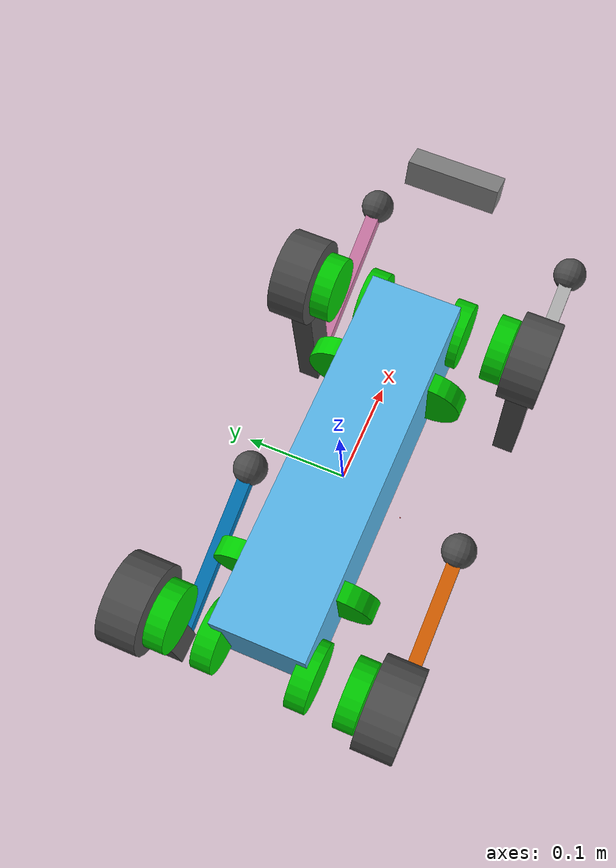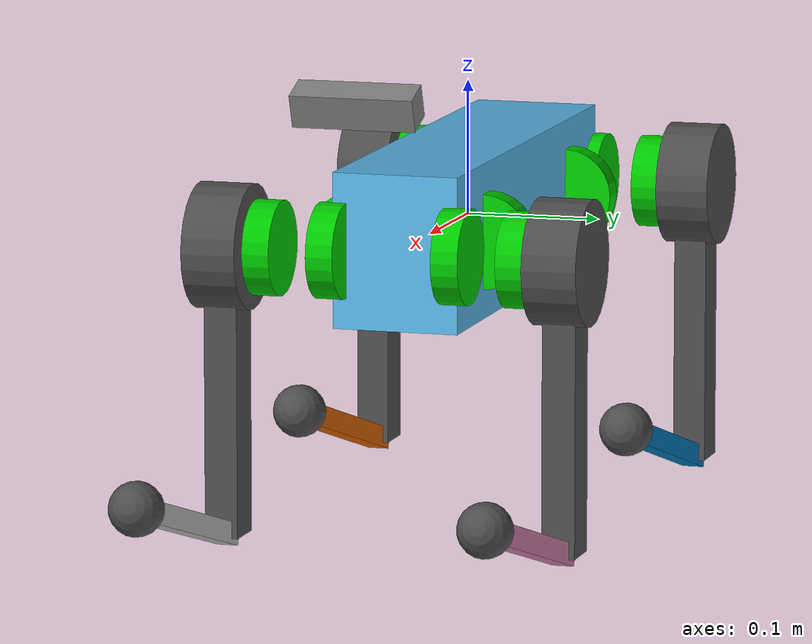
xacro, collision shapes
<?xml version="1.0"?>

<robot name="go1_description" xmlns:xacro="http://www.ros.org/wiki/xacro">

    <xacro:include filename="$(find go1_description)/urdf/go1_description.urdf"/>
    <xacro:include filename="$(find go1_description)/xacro/gazebo.xacro"/>
    <xacro:include filename="$(find robot_common)/xacro/d435.xacro"/>

    <!-- D435 camera -->
    <xacro:sensor_d435 parent="trunk" name="camera">
        <origin xyz="0.28 0 0.12" rpy="0 0.349066 0"/>
    </xacro:sensor_d435>

    <!-- Livox Mid360 LiDAR -->

</robot>

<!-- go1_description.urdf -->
<!-- |    This document was autogenerated by xacro from robot.xacro                    | -->
<!-- |    EDITING THIS FILE BY HAND IS NOT RECOMMENDED                                 | -->
<robot name="go1">
  <material name="black">
    <color rgba="0.0 0.0 0.0 1.0"/>
  </material>
  <material name="blue">
    <color rgba="0.0 0.0 0.8 1.0"/>
  </material>
  <material name="green">
    <color rgba="0.0 0.8 0.0 1.0"/>
  </material>
  <material name="grey">
    <color rgba="0.2 0.2 0.2 1.0"/>
  </material>
  <material name="silver">
    <color rgba="0.9137254901960784 0.9137254901960784 0.8470588235294118 1.0"/>
  </material>
  <material name="orange">
    <color rgba="1.0 0.4235294117647059 0.0392156862745098 1.0"/>
  </material>
  <material name="brown">
    <color rgba="0.8705882352941177 0.8117647058823529 0.7647058823529411 1.0"/>
  </material>
  <material name="red">
    <color rgba="0.8 0.0 0.0 1.0"/>
  </material>
  <material name="white">
    <color rgba="1.0 1.0 1.0 1.0"/>
  </material>

  <link name="base">
    <visual>
      <origin rpy="0 0 0" xyz="0 0 0"/>
      <geometry>
        <box size="0.001 0.001 0.001"/>
      </geometry>
    </visual>
  </link>
  <joint name="floating_base" type="fixed">
    <origin rpy="0 0 0" xyz="0 0 0"/>
    <parent link="base"/>
    <child link="trunk"/>
  </joint>
  <link name="trunk">
    <visual>
      <origin rpy="0 0 0" xyz="0 0 0"/>
      <geometry>
        <mesh filename="package://go1_description/meshes/trunk.dae" scale="1 1 1"/>
      </geometry>
    </visual>
    <collision>
      <origin rpy="0 0 0" xyz="0 0 0"/>
      <geometry>
        <box size="0.3762 0.0935 0.114"/>
      </geometry>
    </collision>
    <inertial>
      <origin rpy="0 0 0" xyz="0.0223 0.002 -0.0005"/>
      <mass value="5.204"/>
      <inertia ixx="0.0168128557" ixy="-0.0002296769" ixz="-0.0002945293" iyy="0.063009565" iyz="-4.18731e-05" izz="0.0716547275"/>
    </inertial>
  </link>
  <joint name="imu_joint" type="fixed">
    <parent link="trunk"/>
    <child link="imu_link"/>
    <origin rpy="0 0 0" xyz="-0.01592 -0.06659 -0.00617"/>
  </joint>
  <link name="imu_link">
    <inertial>
      <mass value="0.001"/>
      <origin rpy="0 0 0" xyz="0 0 0"/>
      <inertia ixx="0.0001" ixy="0" ixz="0" iyy="0.0001" iyz="0" izz="0.0001"/>
    </inertial>
    <visual>
      <origin rpy="0 0 0" xyz="0 0 0"/>
      <geometry>
        <box size="0.001 0.001 0.001"/>
      </geometry>
    </visual>
    <collision>
      <origin rpy="0 0 0" xyz="0 0 0"/>
      <geometry>
        <box size=".001 .001 .001"/>
      </geometry>
    </collision>
  </link>
  <joint name="FR_hip_joint" type="revolute">
    <origin rpy="0 0 0" xyz="0.1881 -0.04675 0"/>
    <parent link="trunk"/>
    <child link="FR_hip"/>
    <axis xyz="1 0 0"/>
    <dynamics damping="0.0" friction="0.0"/>
    <limit effort="23.7" lower="-0.863" upper="0.863" velocity="30.1"/>
  </joint>
  <joint name="FR_hip_rotor_joint" type="fixed">
    <origin rpy="0 0 0" xyz="0.11215 -0.04675 0"/>
    <parent link="trunk"/>
    <child link="FR_hip_rotor"/>
  </joint>
  <link name="FR_hip">
    <visual>
      <origin rpy="3.141592653589793 0 0" xyz="0 0 0"/>
      <geometry>
        <mesh filename="package://go1_description/meshes/hip.dae" scale="1 1 1"/>
      </geometry>
    </visual>
    <collision>
      <origin rpy="1.5707963267948966 0 0" xyz="0 -0.08 0"/>
      <geometry>
        <cylinder length="0.04" radius="0.046"/>
      </geometry>
    </collision>
    <inertial>
      <origin rpy="0 0 0" xyz="-0.005657 0.008752 -0.000102"/>
      <mass value="0.591"/>
      <inertia ixx="0.000334008405" ixy="1.0826066e-05" ixz="1.290732e-06" iyy="0.000619101213" iyz="-1.643194e-06" izz="0.00040057614"/>
    </inertial>
  </link>
  <link name="FR_hip_rotor">
    <visual>
      <origin rpy="0 1.5707963267948966 0" xyz="0 0 0"/>
      <geometry>
        <cylinder length="0.02" radius="0.035"/>
      </geometry>
      <material name="green"/>
    </visual>
    <collision>
      <origin rpy="0 1.5707963267948966 0" xyz="0 0 0"/>
      <geometry>
        <cylinder length="0.02" radius="0.035"/>
      </geometry>
    </collision>
    <inertial>
      <origin rpy="0 0 0" xyz="0.0 0.0 0.0"/>
      <mass value="0.089"/>
      <inertia ixx="0.000111842" ixy="0.0" ixz="0.0" iyy="5.9647e-05" iyz="0.0" izz="5.9647e-05"/>
    </inertial>
  </link>
  <joint name="FR_thigh_joint" type="revolute">
    <origin rpy="0 0 0" xyz="0 -0.08 0"/>
    <parent link="FR_hip"/>
    <child link="FR_thigh"/>
    <axis xyz="0 1 0"/>
    <dynamics damping="0.0" friction="0.0"/>
    <limit effort="23.7" lower="-0.686" upper="4.501" velocity="30.1"/>
  </joint>
  <joint name="FR_thigh_rotor_joint" type="fixed">
    <origin rpy="0 0 0" xyz="0.0 0.00015 0"/>
    <parent link="FR_hip"/>
    <child link="FR_thigh_rotor"/>
  </joint>
  <link name="FR_thigh">
    <visual>
      <origin rpy="0 0 0" xyz="0 0 0"/>
      <geometry>
        <mesh filename="package://go1_description/meshes/thigh_mirror.dae" scale="1 1 1"/>
      </geometry>
    </visual>
    <collision>
      <origin rpy="0 1.5707963267948966 0" xyz="0 0 -0.1065"/>
      <geometry>
        <box size="0.213 0.0245 0.034"/>
      </geometry>
    </collision>
    <inertial>
      <origin rpy="0 0 0" xyz="-0.003342 0.018054 -0.033451"/>
      <mass value="0.92"/>
      <inertia ixx="0.004431760472" ixy="-5.7496807e-05" ixz="-0.000218457134" iyy="0.004485671726" iyz="-0.000572001265" izz="0.000740309489"/>
    </inertial>
  </link>
  <link name="FR_thigh_rotor">
    <visual>
      <origin rpy="1.5707963267948966 0 0" xyz="0 0 0"/>
      <geometry>
        <cylinder length="0.02" radius="0.035"/>
      </geometry>
      <material name="green"/>
    </visual>
    <collision>
      <origin rpy="1.5707963267948966 0 0" xyz="0 0 0"/>
      <geometry>
        <cylinder length="0.02" radius="0.035"/>
      </geometry>
    </collision>
    <inertial>
      <origin rpy="0 0 0" xyz="0.0 0.0 0.0"/>
      <mass value="0.089"/>
      <inertia ixx="5.9647e-05" ixy="0.0" ixz="0.0" iyy="0.000111842" iyz="0.0" izz="5.9647e-05"/>
    </inertial>
  </link>
  <joint name="FR_calf_joint" type="revolute">
    <origin rpy="0 0 0" xyz="0 0 -0.213"/>
    <parent link="FR_thigh"/>
    <child link="FR_calf"/>
    <axis xyz="0 1 0"/>
    <dynamics damping="0.0" friction="0.0"/>
    <limit effort="35.55" lower="-2.818" upper="-0.888" velocity="20.06"/>
  </joint>
  <joint name="FR_calf_rotor_joint" type="fixed">
    <origin rpy="0 0 0" xyz="0.0 0.03235 0"/>
    <parent link="FR_thigh"/>
    <child link="FR_calf_rotor"/>
  </joint>
  <link name="FR_calf">
    <visual>
      <origin rpy="0 0 0" xyz="0 0 0"/>
      <geometry>
        <mesh filename="package://go1_description/meshes/calf.dae" scale="1 1 1"/>
      </geometry>
    </visual>
    <collision>
      <origin rpy="0 1.5707963267948966 0" xyz="0 0 -0.1065"/>
      <geometry>
        <box size="0.213 0.016 0.016"/>
      </geometry>
    </collision>
    <inertial>
      <origin rpy="0 0 0" xyz="0.006197 0.001408 -0.116695"/>
      <mass value="0.135862"/>
      <inertia ixx="0.001088793059" ixy="-2.55679e-07" ixz="7.117814e-06" iyy="0.001100428748" iyz="2.077264e-06" izz="2.4787446e-05"/>
    </inertial>
  </link>
  <link name="FR_calf_rotor">
    <visual>
      <origin rpy="1.5707963267948966 0 0" xyz="0 0 0"/>
      <geometry>
        <cylinder length="0.02" radius="0.035"/>
      </geometry>
      <material name="green"/>
    </visual>
    <collision>
      <origin rpy="1.5707963267948966 0 0" xyz="0 0 0"/>
      <geometry>
        <cylinder length="0.02" radius="0.035"/>
      </geometry>
    </collision>
    <inertial>
      <origin rpy="0 0 0" xyz="0.0 0.0 0.0"/>
      <mass value="0.089"/>
      <inertia ixx="5.9647e-05" ixy="0.0" ixz="0.0" iyy="0.000111842" iyz="0.0" izz="5.9647e-05"/>
    </inertial>
  </link>
  <joint name="FR_foot_fixed" type="fixed">
    <origin rpy="0 0 0" xyz="0 0 -0.213"/>
    <parent link="FR_calf"/>
    <child link="FR_foot"/>
  </joint>
  <link name="FR_foot">
    <visual>
      <origin rpy="0 0 0" xyz="0 0 0"/>
      <geometry>
        <sphere radius="0.01"/>
      </geometry>
    </visual>
    <collision>
      <origin rpy="0 0 0" xyz="0 0 0"/>
      <geometry>
        <sphere radius="0.02"/>
      </geometry>
    </collision>
    <inertial>
      <mass value="0.06"/>
      <inertia ixx="9.600000000000001e-06" ixy="0.0" ixz="0.0" iyy="9.600000000000001e-06" iyz="0.0" izz="9.600000000000001e-06"/>
    </inertial>
  </link>
  <transmission name="FR_hip_tran">
    <type>transmission_interface/SimpleTransmission</type>
    <joint name="FR_hip_joint">
      <hardwareInterface>hardware_interface/EffortJointInterface</hardwareInterface>
    </joint>
    <actuator name="FR_hip_motor">
      <hardwareInterface>hardware_interface/EffortJointInterface</hardwareInterface>
      <mechanicalReduction>1</mechanicalReduction>
    </actuator>
  </transmission>
  <transmission name="FR_thigh_tran">
    <type>transmission_interface/SimpleTransmission</type>
    <joint name="FR_thigh_joint">
      <hardwareInterface>hardware_interface/EffortJointInterface</hardwareInterface>
    </joint>
    <actuator name="FR_thigh_motor">
      <hardwareInterface>hardware_interface/EffortJointInterface</hardwareInterface>
      <mechanicalReduction>1</mechanicalReduction>
    </actuator>
  </transmission>
  <transmission name="FR_calf_tran">
    <type>transmission_interface/SimpleTransmission</type>
    <joint name="FR_calf_joint">
      <hardwareInterface>hardware_interface/EffortJointInterface</hardwareInterface>
    </joint>
    <actuator name="FR_calf_motor">
      <hardwareInterface>hardware_interface/EffortJointInterface</hardwareInterface>
      <mechanicalReduction>1</mechanicalReduction>
    </actuator>
  </transmission>
  <joint name="FL_hip_joint" type="revolute">
    <origin rpy="0 0 0" xyz="0.1881 0.04675 0"/>
    <parent link="trunk"/>
    <child link="FL_hip"/>
    <axis xyz="1 0 0"/>
    <dynamics damping="0.0" friction="0.0"/>
    <limit effort="23.7" lower="-0.863" upper="0.863" velocity="30.1"/>
  </joint>
  <joint name="FL_hip_rotor_joint" type="fixed">
    <origin rpy="0 0 0" xyz="0.11215 0.04675 0"/>
    <parent link="trunk"/>
    <child link="FL_hip_rotor"/>
  </joint>
  <link name="FL_hip">
    <visual>
      <origin rpy="0 0 0" xyz="0 0 0"/>
      <geometry>
        <mesh filename="package://go1_description/meshes/hip.dae" scale="1 1 1"/>
      </geometry>
    </visual>
    <collision>
      <origin rpy="1.5707963267948966 0 0" xyz="0 0.08 0"/>
      <geometry>
        <cylinder length="0.04" radius="0.046"/>
      </geometry>
    </collision>
    <inertial>
      <origin rpy="0 0 0" xyz="-0.005657 -0.008752 -0.000102"/>
      <mass value="0.591"/>
      <inertia ixx="0.000334008405" ixy="-1.0826066e-05" ixz="1.290732e-06" iyy="0.000619101213" iyz="1.643194e-06" izz="0.00040057614"/>
    </inertial>
  </link>
  <link name="FL_hip_rotor">
    <visual>
      <origin rpy="0 1.5707963267948966 0" xyz="0 0 0"/>
      <geometry>
        <cylinder length="0.02" radius="0.035"/>
      </geometry>
      <material name="green"/>
    </visual>
    <collision>
      <origin rpy="0 1.5707963267948966 0" xyz="0 0 0"/>
      <geometry>
        <cylinder length="0.02" radius="0.035"/>
      </geometry>
    </collision>
    <inertial>
      <origin rpy="0 0 0" xyz="0.0 0.0 0.0"/>
      <mass value="0.089"/>
      <inertia ixx="0.000111842" ixy="0.0" ixz="0.0" iyy="5.9647e-05" iyz="0.0" izz="5.9647e-05"/>
    </inertial>
  </link>
  <joint name="FL_thigh_joint" type="revolute">
    <origin rpy="0 0 0" xyz="0 0.08 0"/>
    <parent link="FL_hip"/>
    <child link="FL_thigh"/>
    <axis xyz="0 1 0"/>
    <dynamics damping="0.0" friction="0.0"/>
    <limit effort="23.7" lower="-0.686" upper="4.501" velocity="30.1"/>
  </joint>
  <joint name="FL_thigh_rotor_joint" type="fixed">
    <origin rpy="0 0 0" xyz="0.0 -0.00015 0"/>
    <parent link="FL_hip"/>
    <child link="FL_thigh_rotor"/>
  </joint>
  <link name="FL_thigh">
    <visual>
      <origin rpy="0 0 0" xyz="0 0 0"/>
      <geometry>
        <mesh filename="package://go1_description/meshes/thigh.dae" scale="1 1 1"/>
      </geometry>
    </visual>
    <collision>
      <origin rpy="0 1.5707963267948966 0" xyz="0 0 -0.1065"/>
      <geometry>
        <box size="0.213 0.0245 0.034"/>
      </geometry>
    </collision>
    <inertial>
      <origin rpy="0 0 0" xyz="-0.003342 -0.018054 -0.033451"/>
      <mass value="0.92"/>
      <inertia ixx="0.004431760472" ixy="5.7496807e-05" ixz="-0.000218457134" iyy="0.004485671726" iyz="0.000572001265" izz="0.000740309489"/>
    </inertial>
  </link>
  <link name="FL_thigh_rotor">
    <visual>
      <origin rpy="1.5707963267948966 0 0" xyz="0 0 0"/>
      <geometry>
        <cylinder length="0.02" radius="0.035"/>
      </geometry>
      <material name="green"/>
    </visual>
    <collision>
      <origin rpy="1.5707963267948966 0 0" xyz="0 0 0"/>
      <geometry>
        <cylinder length="0.02" radius="0.035"/>
      </geometry>
    </collision>
    <inertial>
      <origin rpy="0 0 0" xyz="0.0 0.0 0.0"/>
      <mass value="0.089"/>
      <inertia ixx="5.9647e-05" ixy="0.0" ixz="0.0" iyy="0.000111842" iyz="0.0" izz="5.9647e-05"/>
    </inertial>
  </link>
  <joint name="FL_calf_joint" type="revolute">
    <origin rpy="0 0 0" xyz="0 0 -0.213"/>
    <parent link="FL_thigh"/>
    <child link="FL_calf"/>
    <axis xyz="0 1 0"/>
    <dynamics damping="0.0" friction="0.0"/>
    <limit effort="35.55" lower="-2.818" upper="-0.888" velocity="20.06"/>
  </joint>
  <joint name="FL_calf_rotor_joint" type="fixed">
    <origin rpy="0 0 0" xyz="0.0 -0.03235 0"/>
    <parent link="FL_thigh"/>
    <child link="FL_calf_rotor"/>
  </joint>
  <link name="FL_calf">
    <visual>
      <origin rpy="0 0 0" xyz="0 0 0"/>
      <geometry>
        <mesh filename="package://go1_description/meshes/calf.dae" scale="1 1 1"/>
      </geometry>
    </visual>
    <collision>
      <origin rpy="0 1.5707963267948966 0" xyz="0 0 -0.1065"/>
      <geometry>
        <box size="0.213 0.016 0.016"/>
      </geometry>
    </collision>
    <inertial>
      <origin rpy="0 0 0" xyz="0.006197 0.001408 -0.116695"/>
      <mass value="0.135862"/>
      <inertia ixx="0.001088793059" ixy="-2.55679e-07" ixz="7.117814e-06" iyy="0.001100428748" iyz="2.077264e-06" izz="2.4787446e-05"/>
    </inertial>
  </link>
  <link name="FL_calf_rotor">
    <visual>
      <origin rpy="1.5707963267948966 0 0" xyz="0 0 0"/>
      <geometry>
        <cylinder length="0.02" radius="0.035"/>
      </geometry>
      <material name="green"/>
    </visual>
    <collision>
      <origin rpy="1.5707963267948966 0 0" xyz="0 0 0"/>
      <geometry>
        <cylinder length="0.02" radius="0.035"/>
      </geometry>
    </collision>
    <inertial>
      <origin rpy="0 0 0" xyz="0.0 0.0 0.0"/>
      <mass value="0.089"/>
      <inertia ixx="5.9647e-05" ixy="0.0" ixz="0.0" iyy="0.000111842" iyz="0.0" izz="5.9647e-05"/>
    </inertial>
  </link>
  <joint name="FL_foot_fixed" type="fixed">
    <origin rpy="0 0 0" xyz="0 0 -0.213"/>
    <parent link="FL_calf"/>
    <child link="FL_foot"/>
  </joint>
  <link name="FL_foot">
    <visual>
      <origin rpy="0 0 0" xyz="0 0 0"/>
      <geometry>
        <sphere radius="0.01"/>
      </geometry>
    </visual>
    <collision>
      <origin rpy="0 0 0" xyz="0 0 0"/>
      <geometry>
        <sphere radius="0.02"/>
      </geometry>
    </collision>
    <inertial>
      <mass value="0.06"/>
      <inertia ixx="9.600000000000001e-06" ixy="0.0" ixz="0.0" iyy="9.600000000000001e-06" iyz="0.0" izz="9.600000000000001e-06"/>
    </inertial>
  </link>
  <transmission name="FL_hip_tran">
    <type>transmission_interface/SimpleTransmission</type>
    <joint name="FL_hip_joint">
      <hardwareInterface>hardware_interface/EffortJointInterface</hardwareInterface>
    </joint>
    <actuator name="FL_hip_motor">
      <hardwareInterface>hardware_interface/EffortJointInterface</hardwareInterface>
      <mechanicalReduction>1</mechanicalReduction>
    </actuator>
  </transmission>
  <transmission name="FL_thigh_tran">
    <type>transmission_interface/SimpleTransmission</type>
    <joint name="FL_thigh_joint">
      <hardwareInterface>hardware_interface/EffortJointInterface</hardwareInterface>
    </joint>
    <actuator name="FL_thigh_motor">
      <hardwareInterface>hardware_interface/EffortJointInterface</hardwareInterface>
      <mechanicalReduction>1</mechanicalReduction>
    </actuator>
  </transmission>
  <transmission name="FL_calf_tran">
    <type>transmission_interface/SimpleTransmission</type>
    <joint name="FL_calf_joint">
      <hardwareInterface>hardware_interface/EffortJointInterface</hardwareInterface>
    </joint>
    <actuator name="FL_calf_motor">
      <hardwareInterface>hardware_interface/EffortJointInterface</hardwareInterface>
      <mechanicalReduction>1</mechanicalReduction>
    </actuator>
  </transmission>
  <joint name="RR_hip_joint" type="revolute">
    <origin rpy="0 0 0" xyz="-0.1881 -0.04675 0"/>
    <parent link="trunk"/>
    <child link="RR_hip"/>
    <axis xyz="1 0 0"/>
    <dynamics damping="0.0" friction="0.0"/>
    <limit effort="23.7" lower="-0.863" upper="0.863" velocity="30.1"/>
  </joint>
  <joint name="RR_hip_rotor_joint" type="fixed">
    <origin rpy="0 0 0" xyz="-0.11215 -0.04675 0"/>
    <parent link="trunk"/>
    <child link="RR_hip_rotor"/>
  </joint>
  <link name="RR_hip">
    <visual>
      <origin rpy="3.141592653589793 3.141592653589793 0" xyz="0 0 0"/>
      <geometry>
        <mesh filename="package://go1_description/meshes/hip.dae" scale="1 1 1"/>
      </geometry>
    </visual>
    <collision>
      <origin rpy="1.5707963267948966 0 0" xyz="0 -0.08 0"/>
      <geometry>
        <cylinder length="0.04" radius="0.046"/>
      </geometry>
    </collision>
    <inertial>
      <origin rpy="0 0 0" xyz="0.005657 0.008752 -0.000102"/>
      <mass value="0.591"/>
      <inertia ixx="0.000334008405" ixy="-1.0826066e-05" ixz="-1.290732e-06" iyy="0.000619101213" iyz="-1.643194e-06" izz="0.00040057614"/>
    </inertial>
  </link>
  <link name="RR_hip_rotor">
    <visual>
      <origin rpy="0 1.5707963267948966 0" xyz="0 0 0"/>
      <geometry>
        <cylinder length="0.02" radius="0.035"/>
      </geometry>
      <material name="green"/>
    </visual>
    <collision>
      <origin rpy="0 1.5707963267948966 0" xyz="0 0 0"/>
      <geometry>
        <cylinder length="0.02" radius="0.035"/>
      </geometry>
    </collision>
    <inertial>
      <origin rpy="0 0 0" xyz="0.0 0.0 0.0"/>
      <mass value="0.089"/>
      <inertia ixx="0.000111842" ixy="0.0" ixz="0.0" iyy="5.9647e-05" iyz="0.0" izz="5.9647e-05"/>
    </inertial>
  </link>
  <joint name="RR_thigh_joint" type="revolute">
    <origin rpy="0 0 0" xyz="0 -0.08 0"/>
    <parent link="RR_hip"/>
    <child link="RR_thigh"/>
    <axis xyz="0 1 0"/>
    <dynamics damping="0.0" friction="0.0"/>
    <limit effort="23.7" lower="-0.686" upper="4.501" velocity="30.1"/>
  </joint>
  <joint name="RR_thigh_rotor_joint" type="fixed">
    <origin rpy="0 0 0" xyz="0.0 0.00015 0"/>
    <parent link="RR_hip"/>
    <child link="RR_thigh_rotor"/>
  </joint>
  <link name="RR_thigh">
    <visual>
      <origin rpy="0 0 0" xyz="0 0 0"/>
      <geometry>
        <mesh filename="package://go1_description/meshes/thigh_mirror.dae" scale="1 1 1"/>
      </geometry>
    </visual>
    <collision>
      <origin rpy="0 1.5707963267948966 0" xyz="0 0 -0.1065"/>
      <geometry>
        <box size="0.213 0.0245 0.034"/>
      </geometry>
    </collision>
    <inertial>
      <origin rpy="0 0 0" xyz="-0.003342 0.018054 -0.033451"/>
      <mass value="0.92"/>
      <inertia ixx="0.004431760472" ixy="-5.7496807e-05" ixz="-0.000218457134" iyy="0.004485671726" iyz="-0.000572001265" izz="0.000740309489"/>
    </inertial>
  </link>
  <link name="RR_thigh_rotor">
    <visual>
      <origin rpy="1.5707963267948966 0 0" xyz="0 0 0"/>
      <geometry>
        <cylinder length="0.02" radius="0.035"/>
      </geometry>
      <material name="green"/>
    </visual>
    <collision>
      <origin rpy="1.5707963267948966 0 0" xyz="0 0 0"/>
      <geometry>
        <cylinder length="0.02" radius="0.035"/>
      </geometry>
    </collision>
    <inertial>
      <origin rpy="0 0 0" xyz="0.0 0.0 0.0"/>
      <mass value="0.089"/>
      <inertia ixx="5.9647e-05" ixy="0.0" ixz="0.0" iyy="0.000111842" iyz="0.0" izz="5.9647e-05"/>
    </inertial>
  </link>
  <joint name="RR_calf_joint" type="revolute">
    <origin rpy="0 0 0" xyz="0 0 -0.213"/>
    <parent link="RR_thigh"/>
    <child link="RR_calf"/>
    <axis xyz="0 1 0"/>
    <dynamics damping="0.0" friction="0.0"/>
    <limit effort="35.55" lower="-2.818" upper="-0.888" velocity="20.06"/>
  </joint>
  <joint name="RR_calf_rotor_joint" type="fixed">
    <origin rpy="0 0 0" xyz="0.0 0.03235 0"/>
    <parent link="RR_thigh"/>
    <child link="RR_calf_rotor"/>
  </joint>
  <link name="RR_calf">
    <visual>
      <origin rpy="0 0 0" xyz="0 0 0"/>
      <geometry>
        <mesh filename="package://go1_description/meshes/calf.dae" scale="1 1 1"/>
      </geometry>
    </visual>
    <collision>
      <origin rpy="0 1.5707963267948966 0" xyz="0 0 -0.1065"/>
      <geometry>
        <box size="0.213 0.016 0.016"/>
      </geometry>
    </collision>
    <inertial>
      <origin rpy="0 0 0" xyz="0.006197 0.001408 -0.116695"/>
      <mass value="0.135862"/>
      <inertia ixx="0.001088793059" ixy="-2.55679e-07" ixz="7.117814e-06" iyy="0.001100428748" iyz="2.077264e-06" izz="2.4787446e-05"/>
    </inertial>
  </link>
  <link name="RR_calf_rotor">
    <visual>
      <origin rpy="1.5707963267948966 0 0" xyz="0 0 0"/>
      <geometry>
        <cylinder length="0.02" radius="0.035"/>
      </geometry>
      <material name="green"/>
    </visual>
    <collision>
      <origin rpy="1.5707963267948966 0 0" xyz="0 0 0"/>
      <geometry>
        <cylinder length="0.02" radius="0.035"/>
      </geometry>
    </collision>
    <inertial>
      <origin rpy="0 0 0" xyz="0.0 0.0 0.0"/>
      <mass value="0.089"/>
      <inertia ixx="5.9647e-05" ixy="0.0" ixz="0.0" iyy="0.000111842" iyz="0.0" izz="5.9647e-05"/>
    </inertial>
  </link>
  <joint name="RR_foot_fixed" type="fixed">
    <origin rpy="0 0 0" xyz="0 0 -0.213"/>
    <parent link="RR_calf"/>
    <child link="RR_foot"/>
  </joint>
  <link name="RR_foot">
    <visual>
      <origin rpy="0 0 0" xyz="0 0 0"/>
      <geometry>
        <sphere radius="0.01"/>
      </geometry>
    </visual>
    <collision>
      <origin rpy="0 0 0" xyz="0 0 0"/>
      <geometry>
        <sphere radius="0.02"/>
      </geometry>
    </collision>
    <inertial>
      <mass value="0.06"/>
      <inertia ixx="9.600000000000001e-06" ixy="0.0" ixz="0.0" iyy="9.600000000000001e-06" iyz="0.0" izz="9.600000000000001e-06"/>
    </inertial>
  </link>
  <transmission name="RR_hip_tran">
    <type>transmission_interface/SimpleTransmission</type>
    <joint name="RR_hip_joint">
      <hardwareInterface>hardware_interface/EffortJointInterface</hardwareInterface>
    </joint>
    <actuator name="RR_hip_motor">
      <hardwareInterface>hardware_interface/EffortJointInterface</hardwareInterface>
      <mechanicalReduction>1</mechanicalReduction>
    </actuator>
  </transmission>
  <transmission name="RR_thigh_tran">
    <type>transmission_interface/SimpleTransmission</type>
    <joint name="RR_thigh_joint">
      <hardwareInterface>hardware_interface/EffortJointInterface</hardwareInterface>
    </joint>
    <actuator name="RR_thigh_motor">
      <hardwareInterface>hardware_interface/EffortJointInterface</hardwareInterface>
      <mechanicalReduction>1</mechanicalReduction>
    </actuator>
  </transmission>
  <transmission name="RR_calf_tran">
    <type>transmission_interface/SimpleTransmission</type>
    <joint name="RR_calf_joint">
      <hardwareInterface>hardware_interface/EffortJointInterface</hardwareInterface>
    </joint>
    <actuator name="RR_calf_motor">
      <hardwareInterface>hardware_interface/EffortJointInterface</hardwareInterface>
      <mechanicalReduction>1</mechanicalReduction>
    </actuator>
  </transmission>
  <joint name="RL_hip_joint" type="revolute">
    <origin rpy="0 0 0" xyz="-0.1881 0.04675 0"/>
    <parent link="trunk"/>
    <child link="RL_hip"/>
    <axis xyz="1 0 0"/>
    <dynamics damping="0.0" friction="0.0"/>
    <limit effort="23.7" lower="-0.863" upper="0.863" velocity="30.1"/>
  </joint>
  <joint name="RL_hip_rotor_joint" type="fixed">
    <origin rpy="0 0 0" xyz="-0.11215 0.04675 0"/>
    <parent link="trunk"/>
    <child link="RL_hip_rotor"/>
  </joint>
  <link name="RL_hip">
    <visual>
      <origin rpy="0 3.141592653589793 0" xyz="0 0 0"/>
      <geometry>
        <mesh filename="package://go1_description/meshes/hip.dae" scale="1 1 1"/>
      </geometry>
    </visual>
    <collision>
      <origin rpy="1.5707963267948966 0 0" xyz="0 0.08 0"/>
      <geometry>
        <cylinder length="0.04" radius="0.046"/>
      </geometry>
    </collision>
    <inertial>
      <origin rpy="0 0 0" xyz="0.005657 -0.008752 -0.000102"/>
      <mass value="0.591"/>
      <inertia ixx="0.000334008405" ixy="1.0826066e-05" ixz="-1.290732e-06" iyy="0.000619101213" iyz="1.643194e-06" izz="0.00040057614"/>
    </inertial>
  </link>
  <link name="RL_hip_rotor">
    <visual>
      <origin rpy="0 1.5707963267948966 0" xyz="0 0 0"/>
      <geometry>
        <cylinder length="0.02" radius="0.035"/>
      </geometry>
      <material name="green"/>
    </visual>
    <collision>
      <origin rpy="0 1.5707963267948966 0" xyz="0 0 0"/>
      <geometry>
        <cylinder length="0.02" radius="0.035"/>
      </geometry>
    </collision>
    <inertial>
      <origin rpy="0 0 0" xyz="0.0 0.0 0.0"/>
      <mass value="0.089"/>
      <inertia ixx="0.000111842" ixy="0.0" ixz="0.0" iyy="5.9647e-05" iyz="0.0" izz="5.9647e-05"/>
    </inertial>
  </link>
  <joint name="RL_thigh_joint" type="revolute">
    <origin rpy="0 0 0" xyz="0 0.08 0"/>
    <parent link="RL_hip"/>
    <child link="RL_thigh"/>
    <axis xyz="0 1 0"/>
    <dynamics damping="0.0" friction="0.0"/>
    <limit effort="23.7" lower="-0.686" upper="4.501" velocity="30.1"/>
  </joint>
  <joint name="RL_thigh_rotor_joint" type="fixed">
    <origin rpy="0 0 0" xyz="0.0 -0.00015 0"/>
    <parent link="RL_hip"/>
    <child link="RL_thigh_rotor"/>
  </joint>
  <link name="RL_thigh">
    <visual>
      <origin rpy="0 0 0" xyz="0 0 0"/>
      <geometry>
        <mesh filename="package://go1_description/meshes/thigh.dae" scale="1 1 1"/>
      </geometry>
    </visual>
    <collision>
      <origin rpy="0 1.5707963267948966 0" xyz="0 0 -0.1065"/>
      <geometry>
        <box size="0.213 0.0245 0.034"/>
      </geometry>
    </collision>
    <inertial>
      <origin rpy="0 0 0" xyz="-0.003342 -0.018054 -0.033451"/>
      <mass value="0.92"/>
      <inertia ixx="0.004431760472" ixy="5.7496807e-05" ixz="-0.000218457134" iyy="0.004485671726" iyz="0.000572001265" izz="0.000740309489"/>
    </inertial>
  </link>
  <link name="RL_thigh_rotor">
    <visual>
      <origin rpy="1.5707963267948966 0 0" xyz="0 0 0"/>
      <geometry>
        <cylinder length="0.02" radius="0.035"/>
      </geometry>
      <material name="green"/>
    </visual>
    <collision>
      <origin rpy="1.5707963267948966 0 0" xyz="0 0 0"/>
      <geometry>
        <cylinder length="0.02" radius="0.035"/>
      </geometry>
    </collision>
    <inertial>
      <origin rpy="0 0 0" xyz="0.0 0.0 0.0"/>
      <mass value="0.089"/>
      <inertia ixx="5.9647e-05" ixy="0.0" ixz="0.0" iyy="0.000111842" iyz="0.0" izz="5.9647e-05"/>
    </inertial>
  </link>
  <joint name="RL_calf_joint" type="revolute">
    <origin rpy="0 0 0" xyz="0 0 -0.213"/>
    <parent link="RL_thigh"/>
    <child link="RL_calf"/>
    <axis xyz="0 1 0"/>
    <dynamics damping="0.0" friction="0.0"/>
    <limit effort="35.55" lower="-2.818" upper="-0.888" velocity="20.06"/>
  </joint>
  <joint name="RL_calf_rotor_joint" type="fixed">
    <origin rpy="0 0 0" xyz="0.0 -0.03235 0"/>
    <parent link="RL_thigh"/>
    <child link="RL_calf_rotor"/>
  </joint>
  <link name="RL_calf">
    <visual>
      <origin rpy="0 0 0" xyz="0 0 0"/>
      <geometry>
        <mesh filename="package://go1_description/meshes/calf.dae" scale="1 1 1"/>
      </geometry>
    </visual>
    <collision>
      <origin rpy="0 1.5707963267948966 0" xyz="0 0 -0.1065"/>
      <geometry>
        <box size="0.213 0.016 0.016"/>
      </geometry>
    </collision>
    <inertial>
      <origin rpy="0 0 0" xyz="0.006197 0.001408 -0.116695"/>
      <mass value="0.135862"/>
      <inertia ixx="0.001088793059" ixy="-2.55679e-07" ixz="7.117814e-06" iyy="0.001100428748" iyz="2.077264e-06" izz="2.4787446e-05"/>
    </inertial>
  </link>
  <link name="RL_calf_rotor">
    <visual>
      <origin rpy="1.5707963267948966 0 0" xyz="0 0 0"/>
      <geometry>
        <cylinder length="0.02" radius="0.035"/>
      </geometry>
      <material name="green"/>
    </visual>
    <collision>
      <origin rpy="1.5707963267948966 0 0" xyz="0 0 0"/>
      <geometry>
        <cylinder length="0.02" radius="0.035"/>
      </geometry>
    </collision>
    <inertial>
      <origin rpy="0 0 0" xyz="0.0 0.0 0.0"/>
      <mass value="0.089"/>
      <inertia ixx="5.9647e-05" ixy="0.0" ixz="0.0" iyy="0.000111842" iyz="0.0" izz="5.9647e-05"/>
    </inertial>
  </link>
  <joint name="RL_foot_fixed" type="fixed">
    <origin rpy="0 0 0" xyz="0 0 -0.213"/>
    <parent link="RL_calf"/>
    <child link="RL_foot"/>
  </joint>
  <link name="RL_foot">
    <visual>
      <origin rpy="0 0 0" xyz="0 0 0"/>
      <geometry>
        <sphere radius="0.01"/>
      </geometry>
    </visual>
    <collision>
      <origin rpy="0 0 0" xyz="0 0 0"/>
      <geometry>
        <sphere radius="0.02"/>
      </geometry>
    </collision>
    <inertial>
      <mass value="0.06"/>
      <inertia ixx="9.600000000000001e-06" ixy="0.0" ixz="0.0" iyy="9.600000000000001e-06" iyz="0.0" izz="9.600000000000001e-06"/>
    </inertial>
  </link>
  <transmission name="RL_hip_tran">
    <type>transmission_interface/SimpleTransmission</type>
    <joint name="RL_hip_joint">
      <hardwareInterface>hardware_interface/EffortJointInterface</hardwareInterface>
    </joint>
    <actuator name="RL_hip_motor">
      <hardwareInterface>hardware_interface/EffortJointInterface</hardwareInterface>
      <mechanicalReduction>1</mechanicalReduction>
    </actuator>
  </transmission>
  <transmission name="RL_thigh_tran">
    <type>transmission_interface/SimpleTransmission</type>
    <joint name="RL_thigh_joint">
      <hardwareInterface>hardware_interface/EffortJointInterface</hardwareInterface>
    </joint>
    <actuator name="RL_thigh_motor">
      <hardwareInterface>hardware_interface/EffortJointInterface</hardwareInterface>
      <mechanicalReduction>1</mechanicalReduction>
    </actuator>
  </transmission>
  <transmission name="RL_calf_tran">
    <type>transmission_interface/SimpleTransmission</type>
    <joint name="RL_calf_joint">
      <hardwareInterface>hardware_interface/EffortJointInterface</hardwareInterface>
    </joint>
    <actuator name="RL_calf_motor">
      <hardwareInterface>hardware_interface/EffortJointInterface</hardwareInterface>
      <mechanicalReduction>1</mechanicalReduction>
    </actuator>
  </transmission>
</robot>

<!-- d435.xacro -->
<!-- D435 camera xacro for go1_description using Gazebo native libgazebo_ros_camera.so -->

<robot name="sensor_d435" xmlns:xacro="http://ros.org/wiki/xacro">

  <xacro:macro name="sensor_d435" params="parent *origin name:=camera">
    <xacro:property name="M_PI" value="3.1415926535897931" />

    <!-- D435 dimensions -->
    <xacro:property name="d435_cam_width" value="0.090"/>
    <xacro:property name="d435_cam_height" value="0.025"/>
    <xacro:property name="d435_cam_depth" value="0.02505"/>

    <!-- camera body link -->
    <joint name="${name}_joint" type="fixed">
      <xacro:insert_block name="origin" />
      <parent link="${parent}"/>
      <child link="${name}_link" />
    </joint>

    <link name="${name}_link">
      <visual>
        <origin xyz="0 0 0" rpy="${M_PI/2} 0 ${M_PI/2}"/>
        <geometry>
          <mesh filename="package://robot_common/meshes/d435_simplified.stl" />
        </geometry>
        <material name="grey">
          <color rgba="0.5 0.5 0.5 1.0"/>
        </material>
      </visual>
      <collision>
        <origin xyz="0 0 0" rpy="0 0 0"/>
        <geometry>
          <box size="${d435_cam_depth} ${d435_cam_width} ${d435_cam_height}"/>
        </geometry>
      </collision>
      <inertial>
        <mass value="0.072" />
        <origin xyz="0 0 0" />
        <inertia ixx="0.003881243" ixy="0.0" ixz="0.0" iyy="0.000498940" iyz="0.0" izz="0.003879257" />
      </inertial>
    </link>

    <!-- Depth frame -->
    <joint name="${name}_depth_joint" type="fixed">
      <origin xyz="0 0 0" rpy="${-M_PI/2} 0 ${-M_PI/2}"/>
      <parent link="${name}_link"/>
      <child link="${name}_depth_frame"/>
    </joint>
    <link name="${name}_depth_frame"/>

    <!-- Color frame -->
    <joint name="${name}_color_joint" type="fixed">
      <origin xyz="0 0.015 0" rpy="${-M_PI/2} 0 ${-M_PI/2}"/>
      <parent link="${name}_link"/>
      <child link="${name}_color_frame"/>
    </joint>
    <link name="${name}_color_frame"/>

    <!-- Depth sensor -->
    <gazebo reference="${name}_link">
      <sensor name="${name}_depth" type="depth">
        <always_on>1</always_on>
        <update_rate>30</update_rate>
        <visualize>0</visualize>
        <camera>
          <horizontal_fov>1.57</horizontal_fov>
          <image>
            <width>320</width>
            <height>240</height>
          </image>
          <clip>
            <near>0.05</near>
            <far>10</far>
          </clip>
        </camera>
        <plugin name="${name}_depth_controller" filename="libgazebo_ros_camera.so">
          <ros>
            <namespace>${name}</namespace>
          </ros>
          <camera_name>depth</camera_name>
          <frame_name>${name}_depth_frame</frame_name>
          <min_depth>0.05</min_depth>
          <max_depth>10.0</max_depth>
        </plugin>
      </sensor>

      <!-- Color sensor 1.204277184 -->
      <sensor name="${name}_color" type="camera">
        <always_on>1</always_on>
        <update_rate>30</update_rate>
        <visualize>1</visualize>
        <camera>
          <horizontal_fov>1.57</horizontal_fov>
          <image>
            <width>320</width>
            <height>240</height>
            <format>RGB_INT8</format>
          </image>
          <clip>
            <near>0.05</near>
            <far>10</far>
          </clip>
        </camera>
        <plugin name="${name}_color_controller" filename="libgazebo_ros_camera.so">
          <ros>
            <namespace>${name}</namespace>
          </ros>
          <camera_name>color</camera_name>
          <frame_name>${name}_color_frame</frame_name>
        </plugin>
      </sensor>
    </gazebo>

  </xacro:macro>
</robot>
